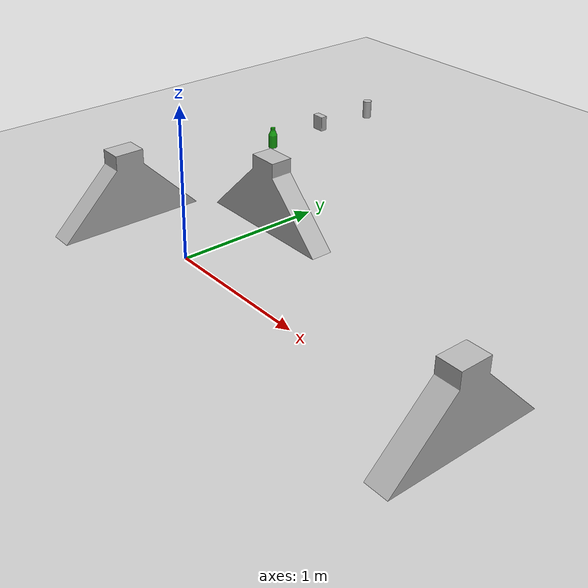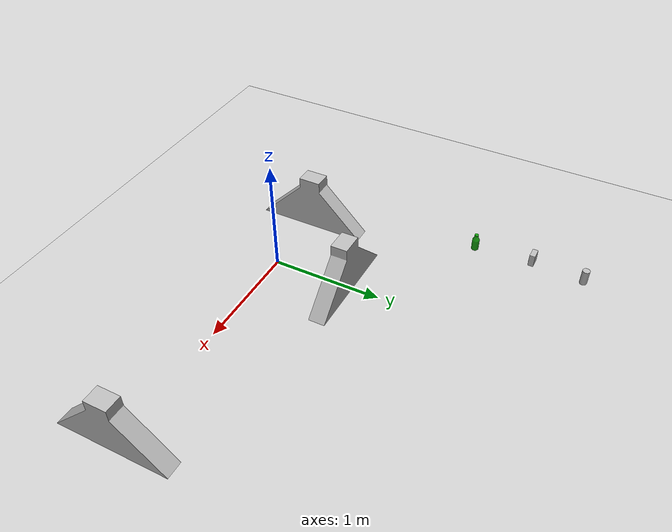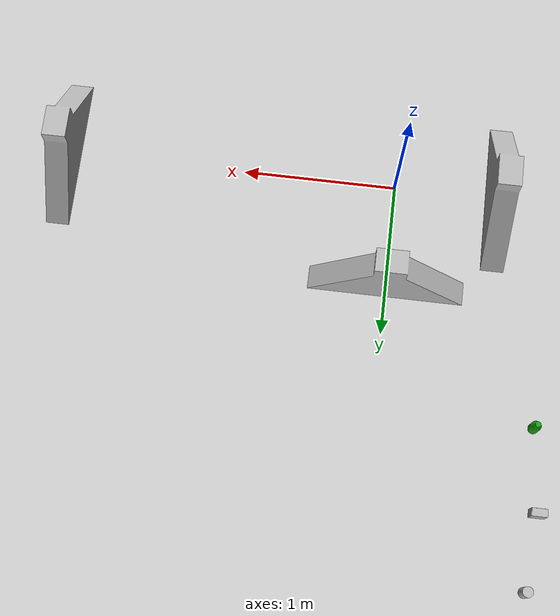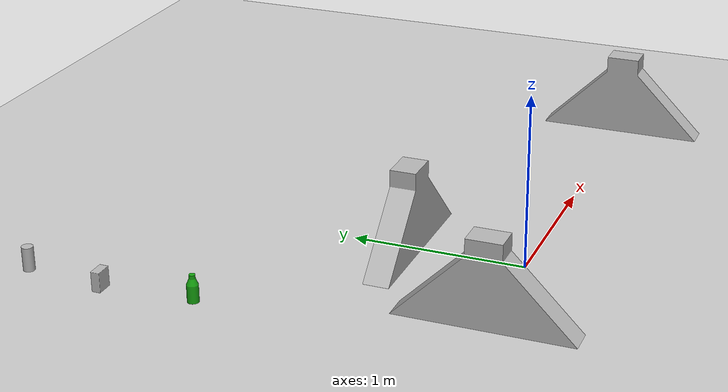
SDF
<?xml version="1.0"?>
<sdf version="1.4">
  <world name="default">
    <include>
      <uri>model://ground_plane</uri>
    </include>
    <include>
      <uri>model://sun</uri>
    </include>
    <model name="qr_base_kitchen">
      <material name="white">                 <!-- 色やテクスチャ -->
        <color rgba="0 0 0 1"/>
      </material>
      <pose> 0.5 0.75 0  0 0 3.14</pose>
      <static>true</static>
      <link name="body">
        <visual name="visual">
          <geometry>
            <mesh><uri>/home/sobits/catkin_ws/src/prost_common/prostbot_gazebo/meshes/prost_layouts/qr_kitchen.dae</uri></mesh>
          </geometry>
          <material name="white"/>
        </visual>
      </link>
    </model>
    <model name="qr_base_customer">
      <pose> 2.25 -0.5 0  0 0 1.57</pose>
      <static>true</static>
      <link name="body">
        <visual name="visual">
          <geometry>
            <mesh><uri>/home/sobits/catkin_ws/src/prost_common/prostbot_gazebo/meshes/prost_layouts/qr_customer.dae</uri></mesh>
          </geometry>
        </visual>
      </link>
    </model>
    <model name="qr_base_wall">
      <pose> -0.75 0.5 0  0 0 -1.57</pose>
      <static>true</static>
      <link name="body">
        <visual name="visual">
          <geometry>
            <mesh><uri>/home/sobits/catkin_ws/src/prost_common/prostbot_gazebo/meshes/prost_layouts/qr_wall.dae</uri></mesh>
          </geometry>
        </visual>
      </link>
    </model>
    <model name="green_tea">
      <pose> -1 1.5  0  0 0 0</pose>
      <static>true</static>
      <link name="body">
        <visual name="visual">
          <geometry>
            <mesh><uri>/home/sobits/catkin_ws/src/prost_common/prostbot_gazebo/meshes/prost_layouts/green_tea.dae</uri></mesh>
          </geometry>
        </visual>
      </link>
    </model>
    <model name="colon">
      <pose> -1 2  0  0 0 0</pose>
      <static>true</static>
      <link name="body">
        <visual name="visual">
          <geometry>
            <mesh><uri>/home/sobits/catkin_ws/src/prost_common/prostbot_gazebo/meshes/prost_layouts/colon.dae</uri></mesh>
          </geometry>
        </visual>
      </link>
    </model>
    <model name="potato_chips">
      <pose> -1 2.5  0  0 0 0</pose>
      <static>true</static>
      <link name="body">
        <visual name="visual">
          <geometry>
            <mesh><uri>/home/sobits/catkin_ws/src/prost_common/prostbot_gazebo/meshes/prost_layouts/potato_chips.dae</uri></mesh>
          </geometry>
        </visual>
      </link>
    </model>
  </world>
</sdf>
